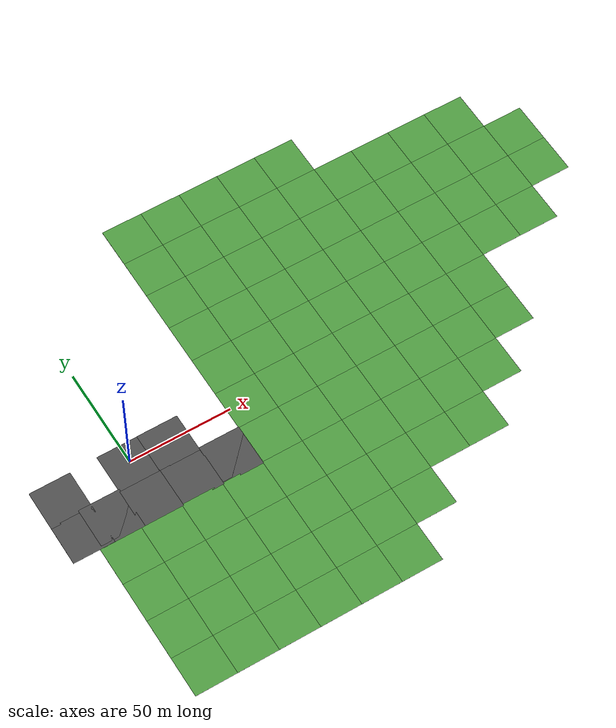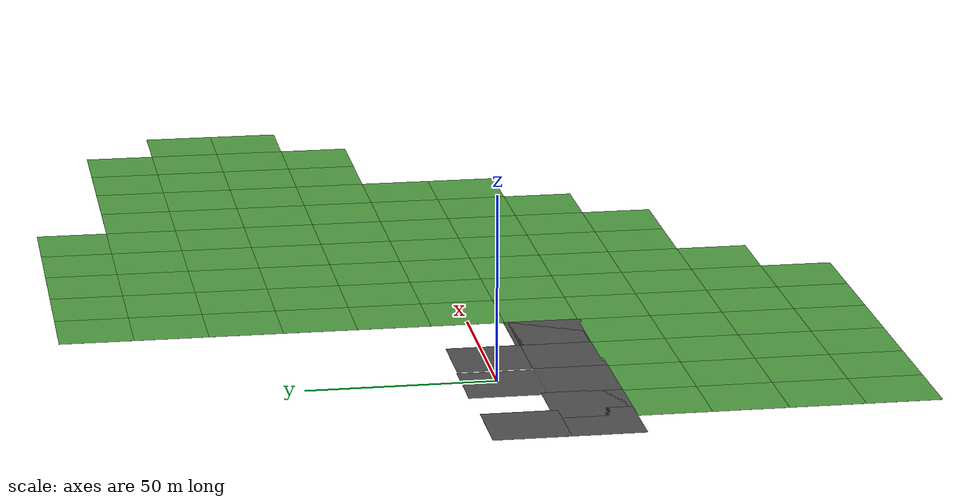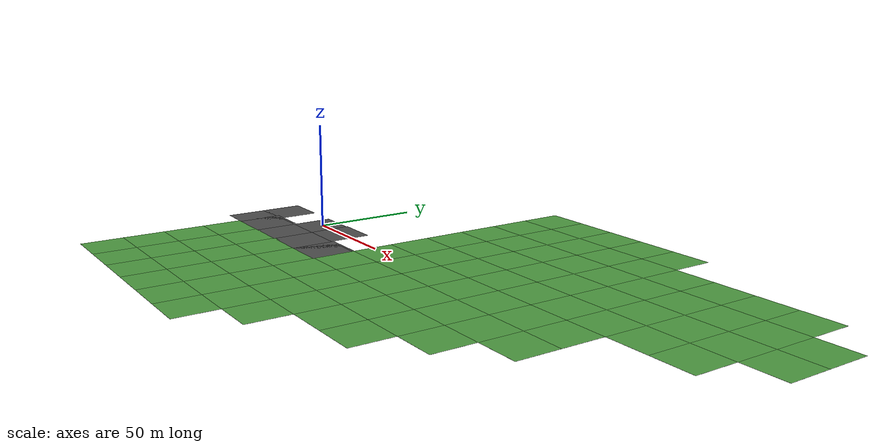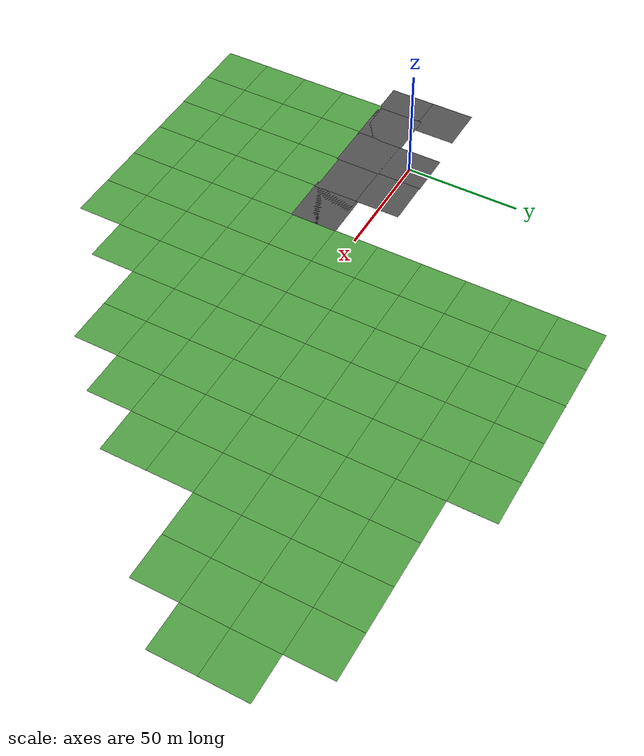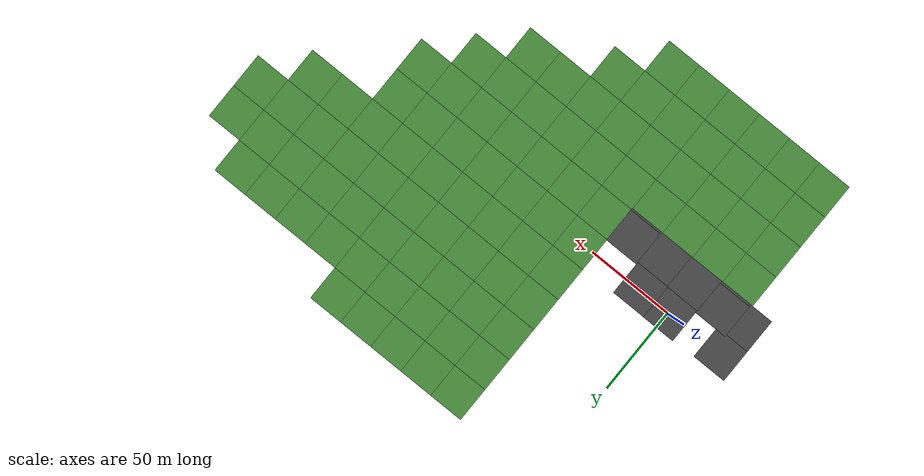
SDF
<sdf version="1.6">
 <world name="default">
  <model name="labrob_ground">
   <static>1</static>
   <link name="link">
    <collision name="collision">
     <geometry><plane><normal>0 0 1</normal><size>20 20</size></plane></geometry>
     <surface><friction><ode><mu>100</mu><mu2>50</mu2></ode></friction></surface>
    </collision>
    <visual name="visual">
     <cast_shadows>0</cast_shadows>
     <geometry><plane><normal>0 0 1</normal><size>20 20</size></plane></geometry>
     <material>
      <script>
       <uri>model://labrob_ground/materials/scripts/</uri>
       <uri>model://labrob_ground/materials/textures/</uri>
       <name>Labrob/AsphaltGround</name>
      </script>
     </material>
    </visual>
   </link>
   <pose>-1.13682 -0.729135 0 0 -0 0</pose>
  </model>
  <model name="labrob_ground_0">
   <static>1</static>
   <link name="link">
    <collision name="collision">
     <geometry><plane><normal>0 0 1</normal><size>20 20</size></plane></geometry>
     <surface><friction><ode><mu>100</mu><mu2>50</mu2></ode></friction></surface>
    </collision>
    <visual name="visual">
     <cast_shadows>0</cast_shadows>
     <geometry><plane><normal>0 0 1</normal><size>20 20</size></plane></geometry>
     <material>
      <script>
       <uri>model://labrob_ground/materials/scripts/</uri>
       <uri>model://labrob_ground/materials/textures/</uri>
       <name>Labrob/AsphaltGround</name>
      </script>
     </material>
    </visual>
   </link>
   <pose>18.5231 -0.837953 0 0 -0 0</pose>
  </model>
  <model name="labrob_ground_1">
   <static>1</static>
   <link name="link">
    <collision name="collision">
     <geometry><plane><normal>0 0 1</normal><size>20 20</size></plane></geometry>
     <surface><friction><ode><mu>100</mu><mu2>50</mu2></ode></friction></surface>
    </collision>
    <visual name="visual">
     <cast_shadows>0</cast_shadows>
     <geometry><plane><normal>0 0 1</normal><size>20 20</size></plane></geometry>
     <material>
      <script>
       <uri>model://labrob_ground/materials/scripts/</uri>
       <uri>model://labrob_ground/materials/textures/</uri>
       <name>Labrob/AsphaltGround</name>
      </script>
     </material>
    </visual>
   </link>
   <pose>-1.15349 -20.7136 0 0 -0 0</pose>
  </model>
  <model name="labrob_ground_2">
   <static>1</static>
   <link name="link">
    <collision name="collision">
     <geometry><plane><normal>0 0 1</normal><size>20 20</size></plane></geometry>
     <surface><friction><ode><mu>100</mu><mu2>50</mu2></ode></friction></surface>
    </collision>
    <visual name="visual">
     <cast_shadows>0</cast_shadows>
     <geometry><plane><normal>0 0 1</normal><size>20 20</size></plane></geometry>
     <material>
      <script>
       <uri>model://labrob_ground/materials/scripts/</uri>
       <uri>model://labrob_ground/materials/textures/</uri>
       <name>Labrob/AsphaltGround</name>
      </script>
     </material>
    </visual>
   </link>
   <pose>18.777 -20.6695 0 0 -0 0</pose>
  </model>
  <model name="labrob_ground_4">
   <static>1</static>
   <link name="link">
    <collision name="collision">
     <geometry><plane><normal>0 0 1</normal><size>20 20</size></plane></geometry>
     <surface><friction><ode><mu>100</mu><mu2>50</mu2></ode></friction></surface>
    </collision>
    <visual name="visual">
     <cast_shadows>0</cast_shadows>
     <geometry><plane><normal>0 0 1</normal><size>20 20</size></plane></geometry>
     <material>
      <script>
       <uri>model://labrob_ground/materials/scripts/</uri>
       <uri>model://labrob_ground/materials/textures/</uri>
       <name>Labrob/AsphaltGround</name>
      </script>
     </material>
    </visual>
   </link>
   <pose>-20.6052 -19.5078 0 0 -0 0</pose>
  </model>
  <model name="labrob_ground_13">
   <static>1</static>
   <link name="link">
    <collision name="collision">
     <geometry><plane><normal>0 0 1</normal><size>20 20</size></plane></geometry>
     <surface><friction><ode><mu>100</mu><mu2>50</mu2></ode></friction></surface>
    </collision>
    <visual name="visual">
     <cast_shadows>0</cast_shadows>
     <geometry><plane><normal>0 0 1</normal><size>20 20</size></plane></geometry>
     <material>
      <script>
       <uri>model://labrob_ground/materials/scripts/</uri>
       <uri>model://labrob_ground/materials/textures/</uri>
       <name>Labrob/AsphaltGround</name>
      </script>
     </material>
    </visual>
   </link>
   <pose>38.4883 -19.6209 0 0 -0 0</pose>
  </model>
  <model name="labrob_ground_14">
   <static>1</static>
   <link name="link">
    <collision name="collision">
     <geometry><plane><normal>0 0 1</normal><size>20 20</size></plane></geometry>
     <surface><friction><ode><mu>100</mu><mu2>50</mu2></ode></friction></surface>
    </collision>
    <visual name="visual">
     <cast_shadows>0</cast_shadows>
     <geometry><plane><normal>0 0 1</normal><size>20 20</size></plane></geometry>
     <material>
      <script>
       <uri>model://labrob_ground/materials/scripts/</uri>
       <uri>model://labrob_ground/materials/textures/</uri>
       <name>Labrob/AsphaltGround</name>
      </script>
     </material>
    </visual>
   </link>
   <pose>-19.9414 -20.7737 0 0 -0 0</pose>
  </model>
  <model name="labrob_ground_15">
   <static>1</static>
   <link name="link">
    <collision name="collision">
     <geometry><plane><normal>0 0 1</normal><size>20 20</size></plane></geometry>
     <surface><friction><ode><mu>100</mu><mu2>50</mu2></ode></friction></surface>
    </collision>
    <visual name="visual">
     <cast_shadows>0</cast_shadows>
     <geometry><plane><normal>0 0 1</normal><size>20 20</size></plane></geometry>
     <material>
      <script>
       <uri>model://labrob_ground/materials/scripts/</uri>
       <uri>model://labrob_ground/materials/textures/</uri>
       <name>Labrob/AsphaltGround</name>
      </script>
     </material>
    </visual>
   </link>
   <pose>-34.5431 -20.6915 0 0 -0 0</pose>
  </model>
  <model name="labrob_ground_16">
   <static>1</static>
   <link name="link">
    <collision name="collision">
     <geometry><plane><normal>0 0 1</normal><size>20 20</size></plane></geometry>
     <surface><friction><ode><mu>100</mu><mu2>50</mu2></ode></friction></surface>
    </collision>
    <visual name="visual">
     <cast_shadows>0</cast_shadows>
     <geometry><plane><normal>0 0 1</normal><size>20 20</size></plane></geometry>
     <material>
      <script>
       <uri>model://labrob_ground/materials/scripts/</uri>
       <uri>model://labrob_ground/materials/textures/</uri>
       <name>Labrob/AsphaltGround</name>
      </script>
     </material>
    </visual>
   </link>
   <pose>-34.5552 -1.44397 0 0 -0 0</pose>
  </model>
  <model name="labrob_ground_18">
   <static>1</static>
   <link name="link">
    <collision name="collision">
     <geometry><plane><normal>0 0 1</normal><size>20 20</size></plane></geometry>
     <surface><friction><ode><mu>100</mu><mu2>50</mu2></ode></friction></surface>
    </collision>
    <visual name="visual">
     <cast_shadows>0</cast_shadows>
     <geometry><plane><normal>0 0 1</normal><size>20 20</size></plane></geometry>
     <material>
      <script>
       <uri>model://labrob_ground/materials/scripts/</uri>
       <uri>model://labrob_ground/materials/textures/</uri>
       <name>Labrob/AsphaltGround</name>
      </script>
     </material>
    </visual>
   </link>
   <pose>38.422 -20.7287 0 0 -0 0</pose>
  </model>
  <model name="grass_plane">
   <static>1</static>
   <link name="link">
    <collision name="collision">
     <geometry><plane><normal>0 0 1</normal><size>500 500</size></plane></geometry>
     <surface><friction><ode><mu>0.5</mu><mu2>0.5</mu2></ode></friction></surface>
    </collision>
    <visual name="visual_0">
     <pose>-40 -40 0 0 -0 0</pose>
     <cast_shadows>0</cast_shadows>
     <geometry><plane><normal>0 0 1</normal><size>20 20</size></plane></geometry>
     <material>
      <script>
       <uri>model://grass_plane/materials/scripts</uri>
       <uri>model://grass_plane/materials/textures</uri>
       <name>vrc/grass</name>
      </script>
     </material>
    </visual>
    <visual name="visual_1">
     <pose>-20 -40 0 0 -0 0</pose>
     <cast_shadows>0</cast_shadows>
     <geometry><plane><normal>0 0 1</normal><size>20 20</size></plane></geometry>
     <material>
      <script>
       <uri>model://grass_plane/materials/scripts</uri>
       <uri>model://grass_plane/materials/textures</uri>
       <name>vrc/grass</name>
      </script>
     </material>
    </visual>
    <visual name="visual_2">
     <pose>0 -40 0 0 -0 0</pose>
     <cast_shadows>0</cast_shadows>
     <geometry><plane><normal>0 0 1</normal><size>20 20</size></plane></geometry>
     <material>
      <script>
       <uri>model://grass_plane/materials/scripts</uri>
       <uri>model://grass_plane/materials/textures</uri>
       <name>vrc/grass</name>
      </script>
     </material>
    </visual>
    <visual name="visual_3">
     <pose>20 -40 0 0 -0 0</pose>
     <cast_shadows>0</cast_shadows>
     <geometry><plane><normal>0 0 1</normal><size>20 20</size></plane></geometry>
     <material>
      <script>
       <uri>model://grass_plane/materials/scripts</uri>
       <uri>model://grass_plane/materials/textures</uri>
       <name>vrc/grass</name>
      </script>
     </material>
    </visual>
    <visual name="visual_4">
     <pose>40 -40 0 0 -0 0</pose>
     <cast_shadows>0</cast_shadows>
     <geometry><plane><normal>0 0 1</normal><size>20 20</size></plane></geometry>
     <material>
      <script>
       <uri>model://grass_plane/materials/scripts</uri>
       <uri>model://grass_plane/materials/textures</uri>
       <name>vrc/grass</name>
      </script>
     </material>
    </visual>
    <visual name="visual_5">
     <pose>60 -40 0 0 -0 0</pose>
     <cast_shadows>0</cast_shadows>
     <geometry><plane><normal>0 0 1</normal><size>20 20</size></plane></geometry>
     <material>
      <script>
       <uri>model://grass_plane/materials/scripts</uri>
       <uri>model://grass_plane/materials/textures</uri>
       <name>vrc/grass</name>
      </script>
     </material>
    </visual>
    <visual name="visual_6">
     <pose>-40 -20 0 0 -0 0</pose>
     <cast_shadows>0</cast_shadows>
     <geometry><plane><normal>0 0 1</normal><size>20 20</size></plane></geometry>
     <material>
      <script>
       <uri>model://grass_plane/materials/scripts</uri>
       <uri>model://grass_plane/materials/textures</uri>
       <name>vrc/grass</name>
      </script>
     </material>
    </visual>
    <visual name="visual_7">
     <pose>-20 -20 0 0 -0 0</pose>
     <cast_shadows>0</cast_shadows>
     <geometry><plane><normal>0 0 1</normal><size>20 20</size></plane></geometry>
     <material>
      <script>
       <uri>model://grass_plane/materials/scripts</uri>
       <uri>model://grass_plane/materials/textures</uri>
       <name>vrc/grass</name>
      </script>
     </material>
    </visual>
    <visual name="visual_8">
     <pose>0 -20 0 0 -0 0</pose>
     <cast_shadows>0</cast_shadows>
     <geometry><plane><normal>0 0 1</normal><size>20 20</size></plane></geometry>
     <material>
      <script>
       <uri>model://grass_plane/materials/scripts</uri>
       <uri>model://grass_plane/materials/textures</uri>
       <name>vrc/grass</name>
      </script>
     </material>
    </visual>
    <visual name="visual_9">
     <pose>20 -20 0 0 -0 0</pose>
     <cast_shadows>0</cast_shadows>
     <geometry><plane><normal>0 0 1</normal><size>20 20</size></plane></geometry>
     <material>
      <script>
       <uri>model://grass_plane/materials/scripts</uri>
       <uri>model://grass_plane/materials/textures</uri>
       <name>vrc/grass</name>
      </script>
     </material>
    </visual>
    <visual name="visual_10">
     <pose>40 -20 0 0 -0 0</pose>
     <cast_shadows>0</cast_shadows>
     <geometry><plane><normal>0 0 1</normal><size>20 20</size></plane></geometry>
     <material>
      <script>
       <uri>model://grass_plane/materials/scripts</uri>
       <uri>model://grass_plane/materials/textures</uri>
       <name>vrc/grass</name>
      </script>
     </material>
    </visual>
    <visual name="visual_11">
     <pose>60 -20 0 0 -0 0</pose>
     <cast_shadows>0</cast_shadows>
     <geometry><plane><normal>0 0 1</normal><size>20 20</size></plane></geometry>
     <material>
      <script>
       <uri>model://grass_plane/materials/scripts</uri>
       <uri>model://grass_plane/materials/textures</uri>
       <name>vrc/grass</name>
      </script>
     </material>
    </visual>
    <visual name="visual_12">
     <pose>80 -20 0 0 -0 0</pose>
     <cast_shadows>0</cast_shadows>
     <geometry><plane><normal>0 0 1</normal><size>20 20</size></plane></geometry>
     <material>
      <script>
       <uri>model://grass_plane/materials/scripts</uri>
       <uri>model://grass_plane/materials/textures</uri>
       <name>vrc/grass</name>
      </script>
     </material>
    </visual>
    <visual name="visual_13">
     <pose>-40 0 0 0 -0 0</pose>
     <cast_shadows>0</cast_shadows>
     <geometry><plane><normal>0 0 1</normal><size>20 20</size></plane></geometry>
     <material>
      <script>
       <uri>model://grass_plane/materials/scripts</uri>
       <uri>model://grass_plane/materials/textures</uri>
       <name>vrc/grass</name>
      </script>
     </material>
    </visual>
    <visual name="visual_14">
     <pose>-20 0 0 0 -0 0</pose>
     <cast_shadows>0</cast_shadows>
     <geometry><plane><normal>0 0 1</normal><size>20 20</size></plane></geometry>
     <material>
      <script>
       <uri>model://grass_plane/materials/scripts</uri>
       <uri>model://grass_plane/materials/textures</uri>
       <name>vrc/grass</name>
      </script>
     </material>
    </visual>
    <visual name="visual_15">
     <cast_shadows>0</cast_shadows>
     <geometry><plane><normal>0 0 1</normal><size>20 20</size></plane></geometry>
     <material>
      <script>
       <uri>model://grass_plane/materials/scripts</uri>
       <uri>model://grass_plane/materials/textures</uri>
       <name>vrc/grass</name>
      </script>
     </material>
    </visual>
    <visual name="visual_16">
     <pose>20 0 0 0 -0 0</pose>
     <cast_shadows>0</cast_shadows>
     <geometry><plane><normal>0 0 1</normal><size>20 20</size></plane></geometry>
     <material>
      <script>
       <uri>model://grass_plane/materials/scripts</uri>
       <uri>model://grass_plane/materials/textures</uri>
       <name>vrc/grass</name>
      </script>
     </material>
    </visual>
    <visual name="visual_17">
     <pose>40 0 0 0 -0 0</pose>
     <cast_shadows>0</cast_shadows>
     <geometry><plane><normal>0 0 1</normal><size>20 20</size></plane></geometry>
     <material>
      <script>
       <uri>model://grass_plane/materials/scripts</uri>
       <uri>model://grass_plane/materials/textures</uri>
       <name>vrc/grass</name>
      </script>
     </material>
    </visual>
    <visual name="visual_18">
     <pose>60 0 0 0 -0 0</pose>
     <cast_shadows>0</cast_shadows>
     <geometry><plane><normal>0 0 1</normal><size>20 20</size></plane></geometry>
     <material>
      <script>
       <uri>model://grass_plane/materials/scripts</uri>
       <uri>model://grass_plane/materials/textures</uri>
       <name>vrc/grass</name>
      </script>
     </material>
    </visual>
    <visual name="visual_19">
     <pose>80 0 0 0 -0 0</pose>
     <cast_shadows>0</cast_shadows>
     <geometry><plane><normal>0 0 1</normal><size>20 20</size></plane></geometry>
     <material>
      <script>
       <uri>model://grass_plane/materials/scripts</uri>
       <uri>model://grass_plane/materials/textures</uri>
       <name>vrc/grass</name>
      </script>
     </material>
    </visual>
    <visual name="visual_20">
     <pose>100 0 0 0 -0 0</pose>
     <cast_shadows>0</cast_shadows>
     <geometry><plane><normal>0 0 1</normal><size>20 20</size></plane></geometry>
     <material>
      <script>
       <uri>model://grass_plane/materials/scripts</uri>
       <uri>model://grass_plane/materials/textures</uri>
       <name>vrc/grass</name>
      </script>
     </material>
    </visual>
    <visual name="visual_21">
     <pose>120 0 0 0 -0 0</pose>
     <cast_shadows>0</cast_shadows>
     <geometry><plane><normal>0 0 1</normal><size>20 20</size></plane></geometry>
     <material>
      <script>
       <uri>model://grass_plane/materials/scripts</uri>
       <uri>model://grass_plane/materials/textures</uri>
       <name>vrc/grass</name>
      </script>
     </material>
    </visual>
    <visual name="visual_22">
     <pose>-40 20 0 0 -0 0</pose>
     <cast_shadows>0</cast_shadows>
     <geometry><plane><normal>0 0 1</normal><size>20 20</size></plane></geometry>
     <material>
      <script>
       <uri>model://grass_plane/materials/scripts</uri>
       <uri>model://grass_plane/materials/textures</uri>
       <name>vrc/grass</name>
      </script>
     </material>
    </visual>
    <visual name="visual_23">
     <pose>-20 20 0 0 -0 0</pose>
     <cast_shadows>0</cast_shadows>
     <geometry><plane><normal>0 0 1</normal><size>20 20</size></plane></geometry>
     <material>
      <script>
       <uri>model://grass_plane/materials/scripts</uri>
       <uri>model://grass_plane/materials/textures</uri>
       <name>vrc/grass</name>
      </script>
     </material>
    </visual>
    <visual name="visual_24">
     <pose>0 20 0 0 -0 0</pose>
     <cast_shadows>0</cast_shadows>
     <geometry><plane><normal>0 0 1</normal><size>20 20</size></plane></geometry>
     <material>
      <script>
       <uri>model://grass_plane/materials/scripts</uri>
       <uri>model://grass_plane/materials/textures</uri>
       <name>vrc/grass</name>
      </script>
     </material>
    </visual>
    <visual name="visual_25">
     <pose>20 20 0 0 -0 0</pose>
     <cast_shadows>0</cast_shadows>
     <geometry><plane><normal>0 0 1</normal><size>20 20</size></plane></geometry>
     <material>
      <script>
       <uri>model://grass_plane/materials/scripts</uri>
       <uri>model://grass_plane/materials/textures</uri>
       <name>vrc/grass</name>
      </script>
     </material>
    </visual>
    <visual name="visual_26">
     <pose>40 20 0 0 -0 0</pose>
     <cast_shadows>0</cast_shadows>
     <geometry><plane><normal>0 0 1</normal><size>20 20</size></plane></geometry>
     <material>
      <script>
       <uri>model://grass_plane/materials/scripts</uri>
       <uri>model://grass_plane/materials/textures</uri>
       <name>vrc/grass</name>
      </script>
     </material>
    </visual>
    <visual name="visual_27">
     <pose>60 20 0 0 -0 0</pose>
     <cast_shadows>0</cast_shadows>
     <geometry><plane><normal>0 0 1</normal><size>20 20</size></plane></geometry>
     <material>
      <script>
       <uri>model://grass_plane/materials/scripts</uri>
       <uri>model://grass_plane/materials/textures</uri>
       <name>vrc/grass</name>
      </script>
     </material>
    </visual>
    <visual name="visual_28">
     <pose>80 20 0 0 -0 0</pose>
     <cast_shadows>0</cast_shadows>
     <geometry><plane><normal>0 0 1</normal><size>20 20</size></plane></geometry>
     <material>
      <script>
       <uri>model://grass_plane/materials/scripts</uri>
       <uri>model://grass_plane/materials/textures</uri>
       <name>vrc/grass</name>
      </script>
     </material>
    </visual>
    <visual name="visual_29">
     <pose>100 20 0 0 -0 0</pose>
     <cast_shadows>0</cast_shadows>
     <geometry><plane><normal>0 0 1</normal><size>20 20</size></plane></geometry>
     <material>
      <script>
       <uri>model://grass_plane/materials/scripts</uri>
       <uri>model://grass_plane/materials/textures</uri>
       <name>vrc/grass</name>
      </script>
     </material>
    </visual>
    <visual name="visual_30">
     <pose>120 20 0 0 -0 0</pose>
     <cast_shadows>0</cast_shadows>
     <geometry><plane><normal>0 0 1</normal><size>20 20</size></plane></geometry>
     <material>
      <script>
       <uri>model://grass_plane/materials/scripts</uri>
       <uri>model://grass_plane/materials/textures</uri>
       <name>vrc/grass</name>
      </script>
     </material>
    </visual>
    <visual name="visual_31">
     <pose>140 20 0 0 -0 0</pose>
     <cast_shadows>0</cast_shadows>
     <geometry><plane><normal>0 0 1</normal><size>20 20</size></plane></geometry>
     <material>
      <script>
       <uri>model://grass_plane/materials/scripts</uri>
       <uri>model://grass_plane/materials/textures</uri>
       <name>vrc/grass</name>
      </script>
     </material>
    </visual>
    <visual name="visual_32">
     <pose>40 40 0 0 -0 0</pose>
     <cast_shadows>0</cast_shadows>
     <geometry><plane><normal>0 0 1</normal><size>20 20</size></plane></geometry>
     <material>
      <script>
       <uri>model://grass_plane/materials/scripts</uri>
       <uri>model://grass_plane/materials/textures</uri>
       <name>vrc/grass</name>
      </script>
     </material>
    </visual>
    <visual name="visual_33">
     <pose>60 40 0 0 -0 0</pose>
     <cast_shadows>0</cast_shadows>
     <geometry><plane><normal>0 0 1</normal><size>20 20</size></plane></geometry>
     <material>
      <script>
       <uri>model://grass_plane/materials/scripts</uri>
       <uri>model://grass_plane/materials/textures</uri>
       <name>vrc/grass</name>
      </script>
     </material>
    </visual>
    <visual name="visual_34">
     <pose>80 40 0 0 -0 0</pose>
     <cast_shadows>0</cast_shadows>
     <geometry><plane><normal>0 0 1</normal><size>20 20</size></plane></geometry>
     <material>
      <script>
       <uri>model://grass_plane/materials/scripts</uri>
       <uri>model://grass_plane/materials/textures</uri>
       <name>vrc/grass</name>
      </script>
     </material>
    </visual>
    <visual name="visual_35">
     <pose>100 40 0 0 -0 0</pose>
     <cast_shadows>0</cast_shadows>
     <geometry><plane><normal>0 0 1</normal><size>20 20</size></plane></geometry>
     <material>
      <script>
       <uri>model://grass_plane/materials/scripts</uri>
       <uri>model://grass_plane/materials/textures</uri>
       <name>vrc/grass</name>
      </script>
     </material>
    </visual>
    <visual name="visual_36">
     <pose>120 40 0 0 -0 0</pose>
     <cast_shadows>0</cast_shadows>
     <geometry><plane><normal>0 0 1</normal><size>20 20</size></plane></geometry>
     <material>
      <script>
       <uri>model://grass_plane/materials/scripts</uri>
       <uri>model://grass_plane/materials/textures</uri>
       <name>vrc/grass</name>
      </script>
     </material>
    </visual>
    <visual name="visual_37">
     <pose>140 40 0 0 -0 0</pose>
     <cast_shadows>0</cast_shadows>
     <geometry><plane><normal>0 0 1</normal><size>20 20</size></plane></geometry>
     <material>
      <script>
       <uri>model://grass_plane/materials/scripts</uri>
       <uri>model://grass_plane/materials/textures</uri>
       <name>vrc/grass</name>
      </script>
     </material>
    </visual>
    <visual name="visual_38">
     <pose>160 40 0 0 -0 0</pose>
     <cast_shadows>0</cast_shadows>
     <geometry><plane><normal>0 0 1</normal><size>20 20</size></plane></geometry>
     <material>
      <script>
       <uri>model://grass_plane/materials/scripts</uri>
       <uri>model://grass_plane/materials/textures</uri>
       <name>vrc/grass</name>
      </script>
     </material>
    </visual>
    <visual name="visual_39">
     <pose>40 60 0 0 -0 0</pose>
     <cast_shadows>0</cast_shadows>
     <geometry><plane><normal>0 0 1</normal><size>20 20</size></plane></geometry>
     <material>
      <script>
       <uri>model://grass_plane/materials/scripts</uri>
       <uri>model://grass_plane/materials/textures</uri>
       <name>vrc/grass</name>
      </script>
     </material>
    </visual>
    <visual name="visual_40">
     <pose>60 60 0 0 -0 0</pose>
     <cast_shadows>0</cast_shadows>
     <geometry><plane><normal>0 0 1</normal><size>20 20</size></plane></geometry>
     <material>
      <script>
       <uri>model://grass_plane/materials/scripts</uri>
       <uri>model://grass_plane/materials/textures</uri>
       <name>vrc/grass</name>
      </script>
     </material>
    </visual>
    <visual name="visual_41">
     <pose>80 60 0 0 -0 0</pose>
     <cast_shadows>0</cast_shadows>
     <geometry><plane><normal>0 0 1</normal><size>20 20</size></plane></geometry>
     <material>
      <script>
       <uri>model://grass_plane/materials/scripts</uri>
       <uri>model://grass_plane/materials/textures</uri>
       <name>vrc/grass</name>
      </script>
     </material>
    </visual>
    <visual name="visual_42">
     <pose>100 60 0 0 -0 0</pose>
     <cast_shadows>0</cast_shadows>
     <geometry><plane><normal>0 0 1</normal><size>20 20</size></plane></geometry>
     <material>
      <script>
       <uri>model://grass_plane/materials/scripts</uri>
       <uri>model://grass_plane/materials/textures</uri>
       <name>vrc/grass</name>
      </script>
     </material>
    </visual>
    <visual name="visual_43">
     <pose>120 60 0 0 -0 0</pose>
     <cast_shadows>0</cast_shadows>
     <geometry><plane><normal>0 0 1</normal><size>20 20</size></plane></geometry>
     <material>
      <script>
       <uri>model://grass_plane/materials/scripts</uri>
       <uri>model://grass_plane/materials/textures</uri>
       <name>vrc/grass</name>
      </script>
     </material>
    </visual>
    <visual name="visual_44">
     <pose>140 60 0 0 -0 0</pose>
     <cast_shadows>0</cast_shadows>
     <geometry><plane><normal>0 0 1</normal><size>20 20</size></plane></geometry>
     <material>
      <script>
       <uri>model://grass_plane/materials/scripts</uri>
       <uri>model://grass_plane/materials/textures</uri>
       <name>vrc/grass</name>
      </script>
     </material>
    </visual>
    <visual name="visual_45">
     <pose>160 60 0 0 -0 0</pose>
     <cast_shadows>0</cast_shadows>
     <geometry><plane><normal>0 0 1</normal><size>20 20</size></plane></geometry>
     <material>
      <script>
       <uri>model://grass_plane/materials/scripts</uri>
       <uri>model://grass_plane/materials/textures</uri>
       <name>vrc/grass</name>
      </script>
     </material>
    </visual>
    <visual name="visual_46">
     <pose>40 80 0 0 -0 0</pose>
     <cast_shadows>0</cast_shadows>
     <geometry><plane><normal>0 0 1</normal><size>20 20</size></plane></geometry>
     <material>
      <script>
       <uri>model://grass_plane/materials/scripts</uri>
       <uri>model://grass_plane/materials/textures</uri>
       <name>vrc/grass</name>
      </script>
     </material>
    </visual>
    <visual name="visual_47">
     <pose>60 80 0 0 -0 0</pose>
     <cast_shadows>0</cast_shadows>
     <geometry><plane><normal>0 0 1</normal><size>20 20</size></plane></geometry>
     <material>
      <script>
       <uri>model://grass_plane/materials/scripts</uri>
       <uri>model://grass_plane/materials/textures</uri>
       <name>vrc/grass</name>
      </script>
     </material>
    </visual>
    <visual name="visual_48">
     <pose>80 80 0 0 -0 0</pose>
     <cast_shadows>0</cast_shadows>
     <geometry><plane><normal>0 0 1</normal><size>20 20</size></plane></geometry>
     <material>
      <script>
       <uri>model://grass_plane/materials/scripts</uri>
       <uri>model://grass_plane/materials/textures</uri>
       <name>vrc/grass</name>
      </script>
     </material>
    </visual>
    <visual name="visual_49">
     <pose>100 80 0 0 -0 0</pose>
     <cast_shadows>0</cast_shadows>
     <geometry><plane><normal>0 0 1</normal><size>20 20</size></plane></geometry>
     <material>
      <script>
       <uri>model://grass_plane/materials/scripts</uri>
       <uri>model://grass_plane/materials/textures</uri>
       <name>vrc/grass</name>
      </script>
     </material>
    </visual>
    <visual name="visual_50">
     <pose>120 80 0 0 -0 0</pose>
     <cast_shadows>0</cast_shadows>
     <geometry><plane><normal>0 0 1</normal><size>20 20</size></plane></geometry>
     <material>
      <script>
       <uri>model://grass_plane/materials/scripts</uri>
       <uri>model://grass_plane/materials/textures</uri>
       <name>vrc/grass</name>
      </script>
     </material>
    </visual>
    <visual name="visual_51">
     <pose>140 80 0 0 -0 0</pose>
     <cast_shadows>0</cast_shadows>
     <geometry><plane><normal>0 0 1</normal><size>20 20</size></plane></geometry>
     <material>
      <script>
       <uri>model://grass_plane/materials/scripts</uri>
       <uri>model://grass_plane/materials/textures</uri>
       <name>vrc/grass</name>
      </script>
     </material>
    </visual>
    <visual name="visual_52">
     <pose>160 80 0 0 -0 0</pose>
     <cast_shadows>0</cast_shadows>
     <geometry><plane><normal>0 0 1</normal><size>20 20</size></plane></geometry>
     <material>
      <script>
       <uri>model://grass_plane/materials/scripts</uri>
       <uri>model://grass_plane/materials/textures</uri>
       <name>vrc/grass</name>
      </script>
     </material>
    </visual>
    <visual name="visual_53">
     <pose>180 80 0 0 -0 0</pose>
     <cast_shadows>0</cast_shadows>
     <geometry><plane><normal>0 0 1</normal><size>20 20</size></plane></geometry>
     <material>
      <script>
       <uri>model://grass_plane/materials/scripts</uri>
       <uri>model://grass_plane/materials/textures</uri>
       <name>vrc/grass</name>
      </script>
     </material>
    </visual>
    <visual name="visual_54">
     <pose>200 80 0 0 -0 0</pose>
     <cast_shadows>0</cast_shadows>
     <geometry><plane><normal>0 0 1</normal><size>20 20</size></plane></geometry>
     <material>
      <script>
       <uri>model://grass_plane/materials/scripts</uri>
       <uri>model://grass_plane/materials/textures</uri>
       <name>vrc/grass</name>
      </script>
     </material>
    </visual>
    <visual name="visual_55">
     <pose>40 100 0 0 -0 0</pose>
     <cast_shadows>0</cast_shadows>
     <geometry><plane><normal>0 0 1</normal><size>20 20</size></plane></geometry>
     <material>
      <script>
       <uri>model://grass_plane/materials/scripts</uri>
       <uri>model://grass_plane/materials/textures</uri>
       <name>vrc/grass</name>
      </script>
     </material>
    </visual>
    <visual name="visual_56">
     <pose>60 100 0 0 -0 0</pose>
     <cast_shadows>0</cast_shadows>
     <geometry><plane><normal>0 0 1</normal><size>20 20</size></plane></geometry>
     <material>
      <script>
       <uri>model://grass_plane/materials/scripts</uri>
       <uri>model://grass_plane/materials/textures</uri>
       <name>vrc/grass</name>
      </script>
     </material>
    </visual>
    <visual name="visual_57">
     <pose>80 100 0 0 -0 0</pose>
     <cast_shadows>0</cast_shadows>
     <geometry><plane><normal>0 0 1</normal><size>20 20</size></plane></geometry>
     <material>
      <script>
       <uri>model://grass_plane/materials/scripts</uri>
       <uri>model://grass_plane/materials/textures</uri>
       <name>vrc/grass</name>
      </script>
     </material>
    </visual>
    <visual name="visual_58">
     <pose>100 100 0 0 -0 0</pose>
     <cast_shadows>0</cast_shadows>
     <geometry><plane><normal>0 0 1</normal><size>20 20</size></plane></geometry>
     <material>
      <script>
       <uri>model://grass_plane/materials/scripts</uri>
       <uri>model://grass_plane/materials/textures</uri>
       <name>vrc/grass</name>
      </script>
     </material>
    </visual>
    <visual name="visual_59">
     <pose>120 100 0 0 -0 0</pose>
     <cast_shadows>0</cast_shadows>
     <geometry><plane><normal>0 0 1</normal><size>20 20</size></plane></geometry>
     <material>
      <script>
       <uri>model://grass_plane/materials/scripts</uri>
       <uri>model://grass_plane/materials/textures</uri>
       <name>vrc/grass</name>
      </script>
     </material>
    </visual>
    <visual name="visual_60">
     <pose>140 100 0 0 -0 0</pose>
     <cast_shadows>0</cast_shadows>
     <geometry><plane><normal>0 0 1</normal><size>20 20</size></plane></geometry>
     <material>
      <script>
       <uri>model://grass_plane/materials/scripts</uri>
       <uri>model://grass_plane/materials/textures</uri>
       <name>vrc/grass</name>
      </script>
     </material>
    </visual>
    <visual name="visual_61">
     <pose>160 100 0 0 -0 0</pose>
     <cast_shadows>0</cast_shadows>
     <geometry><plane><normal>0 0 1</normal><size>20 20</size></plane></geometry>
     <material>
      <script>
       <uri>model://grass_plane/materials/scripts</uri>
       <uri>model://grass_plane/materials/textures</uri>
       <name>vrc/grass</name>
      </script>
     </material>
    </visual>
    <visual name="visual_62">
     <pose>180 100 0 0 -0 0</pose>
     <cast_shadows>0</cast_shadows>
     <geometry><plane><normal>0 0 1</normal><size>20 20</size></plane></geometry>
     <material>
      <script>
       <uri>model://grass_plane/materials/scripts</uri>
       <uri>model://grass_plane/materials/textures</uri>
       <name>vrc/grass</name>
      </script>
     </material>
    </visual>
    <visual name="visual_63">
     <pose>200 100 0 0 -0 0</pose>
     <cast_shadows>0</cast_shadows>
     <geometry><plane><normal>0 0 1</normal><size>20 20</size></plane></geometry>
     <material>
      <script>
       <uri>model://grass_plane/materials/scripts</uri>
       <uri>model://grass_plane/materials/textures</uri>
       <name>vrc/grass</name>
      </script>
     </material>
    </visual>
    <visual name="visual_63a">
     <pose>220 100 0 0 -0 0</pose>
     <cast_shadows>0</cast_shadows>
     <geometry><plane><normal>0 0 1</normal><size>20 20</size></plane></geometry>
     <material>
      <script>
       <uri>model://grass_plane/materials/scripts</uri>
       <uri>model://grass_plane/materials/textures</uri>
       <name>vrc/grass</name>
      </script>
     </material>
    </visual>
    <visual name="visual_64">
     <pose>40 120 0 0 -0 0</pose>
     <cast_shadows>0</cast_shadows>
     <geometry><plane><normal>0 0 1</normal><size>20 20</size></plane></geometry>
     <material>
      <script>
       <uri>model://grass_plane/materials/scripts</uri>
       <uri>model://grass_plane/materials/textures</uri>
       <name>vrc/grass</name>
      </script>
     </material>
    </visual>
    <visual name="visual_65">
     <pose>60 120 0 0 -0 0</pose>
     <cast_shadows>0</cast_shadows>
     <geometry><plane><normal>0 0 1</normal><size>20 20</size></plane></geometry>
     <material>
      <script>
       <uri>model://grass_plane/materials/scripts</uri>
       <uri>model://grass_plane/materials/textures</uri>
       <name>vrc/grass</name>
      </script>
     </material>
    </visual>
    <visual name="visual_66">
     <pose>80 120 0 0 -0 0</pose>
     <cast_shadows>0</cast_shadows>
     <geometry><plane><normal>0 0 1</normal><size>20 20</size></plane></geometry>
     <material>
      <script>
       <uri>model://grass_plane/materials/scripts</uri>
       <uri>model://grass_plane/materials/textures</uri>
       <name>vrc/grass</name>
      </script>
     </material>
    </visual>
    <visual name="visual_67">
     <pose>100 120 0 0 -0 0</pose>
     <cast_shadows>0</cast_shadows>
     <geometry><plane><normal>0 0 1</normal><size>20 20</size></plane></geometry>
     <material>
      <script>
       <uri>model://grass_plane/materials/scripts</uri>
       <uri>model://grass_plane/materials/textures</uri>
       <name>vrc/grass</name>
      </script>
     </material>
    </visual>
    <visual name="visual_68">
     <pose>120 120 0 0 -0 0</pose>
     <cast_shadows>0</cast_shadows>
     <geometry><plane><normal>0 0 1</normal><size>20 20</size></plane></geometry>
     <material>
      <script>
       <uri>model://grass_plane/materials/scripts</uri>
       <uri>model://grass_plane/materials/textures</uri>
       <name>vrc/grass</name>
      </script>
     </material>
    </visual>
    <visual name="visual_69">
     <pose>140 120 0 0 -0 0</pose>
     <cast_shadows>0</cast_shadows>
     <geometry><plane><normal>0 0 1</normal><size>20 20</size></plane></geometry>
     <material>
      <script>
       <uri>model://grass_plane/materials/scripts</uri>
       <uri>model://grass_plane/materials/textures</uri>
       <name>vrc/grass</name>
      </script>
     </material>
    </visual>
    <visual name="visual_70">
     <pose>160 120 0 0 -0 0</pose>
     <cast_shadows>0</cast_shadows>
     <geometry><plane><normal>0 0 1</normal><size>20 20</size></plane></geometry>
     <material>
      <script>
       <uri>model://grass_plane/materials/scripts</uri>
       <uri>model://grass_plane/materials/textures</uri>
       <name>vrc/grass</name>
      </script>
     </material>
    </visual>
    <visual name="visual_71">
     <pose>180 120 0 0 -0 0</pose>
     <cast_shadows>0</cast_shadows>
     <geometry><plane><normal>0 0 1</normal><size>20 20</size></plane></geometry>
     <material>
      <script>
       <uri>model://grass_plane/materials/scripts</uri>
       <uri>model://grass_plane/materials/textures</uri>
       <name>vrc/grass</name>
      </script>
     </material>
    </visual>
    <visual name="visual_72">
     <pose>200 120 0 0 -0 0</pose>
     <cast_shadows>0</cast_shadows>
     <geometry><plane><normal>0 0 1</normal><size>20 20</size></plane></geometry>
     <material>
      <script>
       <uri>model://grass_plane/materials/scripts</uri>
       <uri>model://grass_plane/materials/textures</uri>
       <name>vrc/grass</name>
      </script>
     </material>
    </visual>
    <visual name="visual_72a">
     <pose>220 120 0 0 -0 0</pose>
     <cast_shadows>0</cast_shadows>
     <geometry><plane><normal>0 0 1</normal><size>20 20</size></plane></geometry>
     <material>
      <script>
       <uri>model://grass_plane/materials/scripts</uri>
       <uri>model://grass_plane/materials/textures</uri>
       <name>vrc/grass</name>
      </script>
     </material>
    </visual>
    <visual name="visual_73">
     <pose>40 140 0 0 -0 0</pose>
     <cast_shadows>0</cast_shadows>
     <geometry><plane><normal>0 0 1</normal><size>20 20</size></plane></geometry>
     <material>
      <script>
       <uri>model://grass_plane/materials/scripts</uri>
       <uri>model://grass_plane/materials/textures</uri>
       <name>vrc/grass</name>
      </script>
     </material>
    </visual>
    <visual name="visual_74">
     <pose>60 140 0 0 -0 0</pose>
     <cast_shadows>0</cast_shadows>
     <geometry><plane><normal>0 0 1</normal><size>20 20</size></plane></geometry>
     <material>
      <script>
       <uri>model://grass_plane/materials/scripts</uri>
       <uri>model://grass_plane/materials/textures</uri>
       <name>vrc/grass</name>
      </script>
     </material>
    </visual>
    <visual name="visual_75">
     <pose>80 140 0 0 -0 0</pose>
     <cast_shadows>0</cast_shadows>
     <geometry><plane><normal>0 0 1</normal><size>20 20</size></plane></geometry>
     <material>
      <script>
       <uri>model://grass_plane/materials/scripts</uri>
       <uri>model://grass_plane/materials/textures</uri>
       <name>vrc/grass</name>
      </script>
     </material>
    </visual>
    <visual name="visual_76">
     <pose>100 140 0 0 -0 0</pose>
     <cast_shadows>0</cast_shadows>
     <geometry><plane><normal>0 0 1</normal><size>20 20</size></plane></geometry>
     <material>
      <script>
       <uri>model://grass_plane/materials/scripts</uri>
       <uri>model://grass_plane/materials/textures</uri>
       <name>vrc/grass</name>
      </script>
     </material>
    </visual>
    <visual name="visual_77">
     <pose>120 140 0 0 -0 0</pose>
     <cast_shadows>0</cast_shadows>
     <geometry><plane><normal>0 0 1</normal><size>20 20</size></plane></geometry>
     <material>
      <script>
       <uri>model://grass_plane/materials/scripts</uri>
       <uri>model://grass_plane/materials/textures</uri>
       <name>vrc/grass</name>
      </script>
     </material>
    </visual>
    <visual name="visual_78">
     <pose>140 140 0 0 -0 0</pose>
     <cast_shadows>0</cast_shadows>
     <geometry><plane><normal>0 0 1</normal><size>20 20</size></plane></geometry>
     <material>
      <script>
       <uri>model://grass_plane/materials/scripts</uri>
       <uri>model://grass_plane/materials/textures</uri>
       <name>vrc/grass</name>
      </script>
     </material>
    </visual>
    <visual name="visual_79">
     <pose>160 140 0 0 -0 0</pose>
     <cast_shadows>0</cast_shadows>
     <geometry><plane><normal>0 0 1</normal><size>20 20</size></plane></geometry>
     <material>
      <script>
       <uri>model://grass_plane/materials/scripts</uri>
       <uri>model://grass_plane/materials/textures</uri>
       <name>vrc/grass</name>
      </script>
     </material>
    </visual>
    <visual name="visual_80">
     <pose>180 140 0 0 -0 0</pose>
     <cast_shadows>0</cast_shadows>
     <geometry><plane><normal>0 0 1</normal><size>20 20</size></plane></geometry>
     <material>
      <script>
       <uri>model://grass_plane/materials/scripts</uri>
       <uri>model://grass_plane/materials/textures</uri>
       <name>vrc/grass</name>
      </script>
     </material>
    </visual>
    <visual name="visual_81">
     <pose>200 140 0 0 -0 0</pose>
     <cast_shadows>0</cast_shadows>
     <geometry><plane><normal>0 0 1</normal><size>20 20</size></plane></geometry>
     <material>
      <script>
       <uri>model://grass_plane/materials/scripts</uri>
       <uri>model://grass_plane/materials/textures</uri>
       <name>vrc/grass</name>
      </script>
     </material>
    </visual>
    <visual name="visual_82">
     <pose>40 160 0 0 -0 0</pose>
     <cast_shadows>0</cast_shadows>
     <geometry><plane><normal>0 0 1</normal><size>20 20</size></plane></geometry>
     <material>
      <script>
       <uri>model://grass_plane/materials/scripts</uri>
       <uri>model://grass_plane/materials/textures</uri>
       <name>vrc/grass</name>
      </script>
     </material>
    </visual>
    <visual name="visual_83">
     <pose>60 160 0 0 -0 0</pose>
     <cast_shadows>0</cast_shadows>
     <geometry><plane><normal>0 0 1</normal><size>20 20</size></plane></geometry>
     <material>
      <script>
       <uri>model://grass_plane/materials/scripts</uri>
       <uri>model://grass_plane/materials/textures</uri>
       <name>vrc/grass</name>
      </script>
     </material>
    </visual>
    <visual name="visual_84">
     <pose>80 160 0 0 -0 0</pose>
     <cast_shadows>0</cast_shadows>
     <geometry><plane><normal>0 0 1</normal><size>20 20</size></plane></geometry>
     <material>
      <script>
       <uri>model://grass_plane/materials/scripts</uri>
       <uri>model://grass_plane/materials/textures</uri>
       <name>vrc/grass</name>
      </script>
     </material>
    </visual>
    <visual name="visual_85">
     <pose>100 160 0 0 -0 0</pose>
     <cast_shadows>0</cast_shadows>
     <geometry><plane><normal>0 0 1</normal><size>20 20</size></plane></geometry>
     <material>
      <script>
       <uri>model://grass_plane/materials/scripts</uri>
       <uri>model://grass_plane/materials/textures</uri>
       <name>vrc/grass</name>
      </script>
     </material>
    </visual>
    <visual name="visual_86">
     <pose>120 160 0 0 -0 0</pose>
     <cast_shadows>0</cast_shadows>
     <geometry><plane><normal>0 0 1</normal><size>20 20</size></plane></geometry>
     <material>
      <script>
       <uri>model://grass_plane/materials/scripts</uri>
       <uri>model://grass_plane/materials/textures</uri>
       <name>vrc/grass</name>
      </script>
     </material>
    </visual>
   </link>
   <pose>18.2162 -59.964 0 0 -0 0</pose>
  </model>
 </world>
</sdf>
